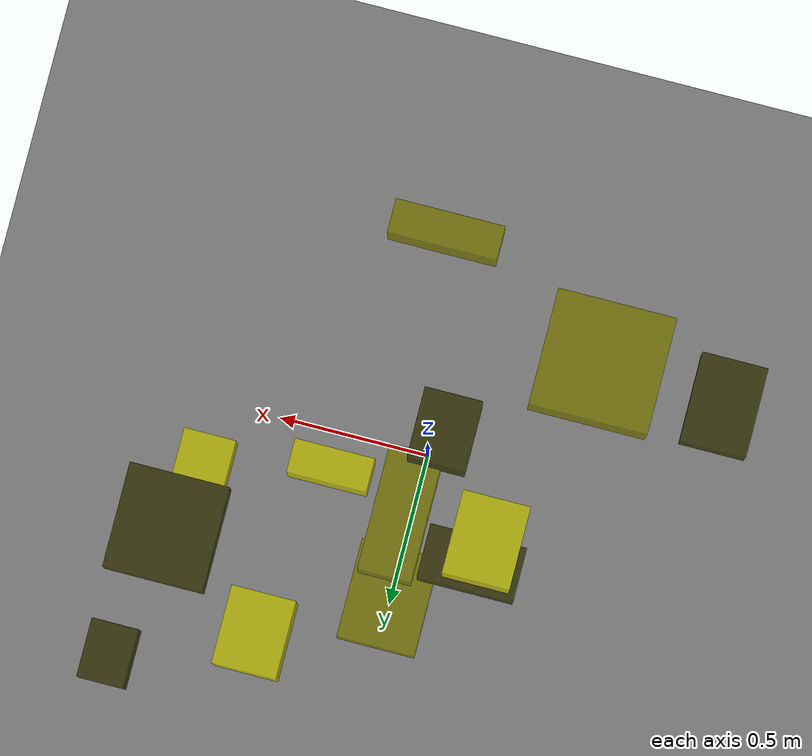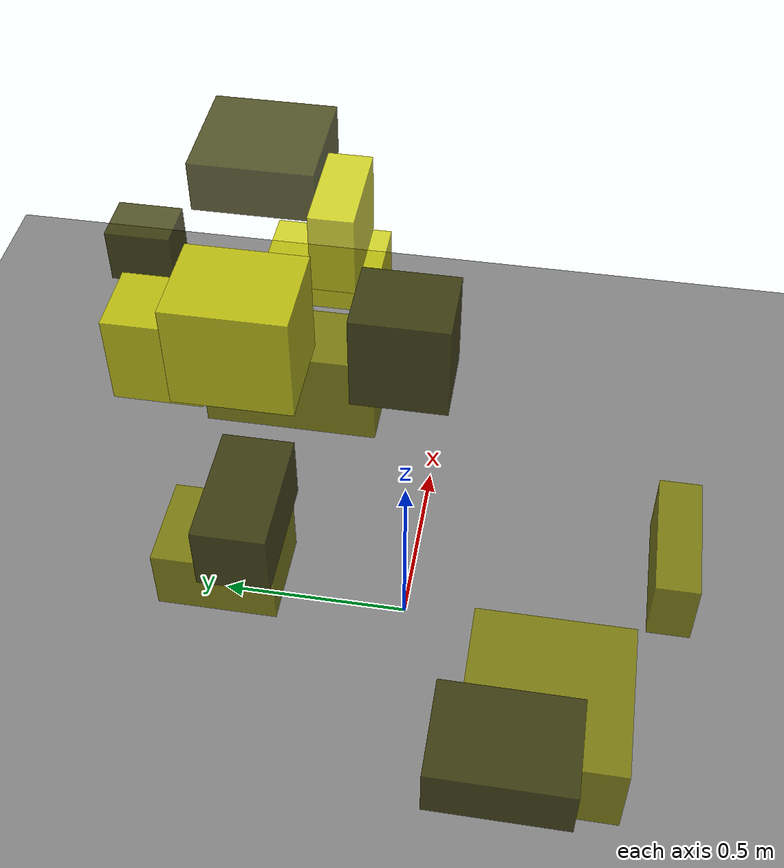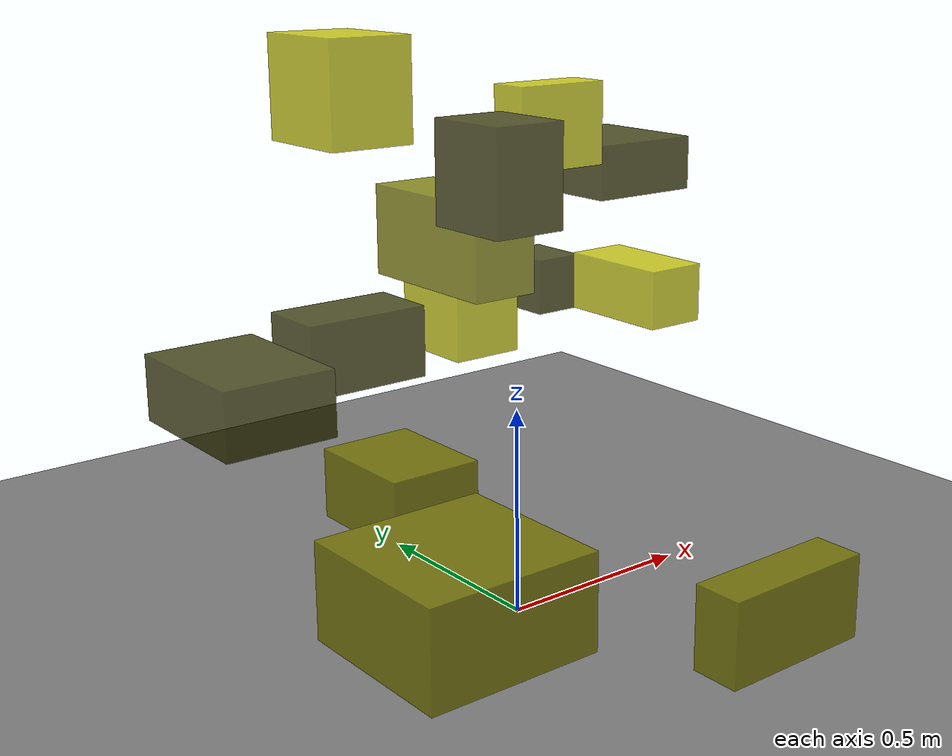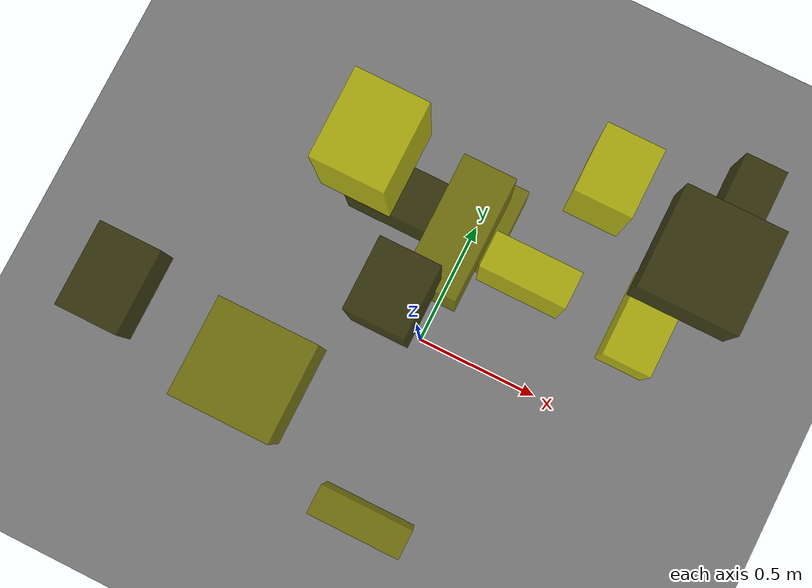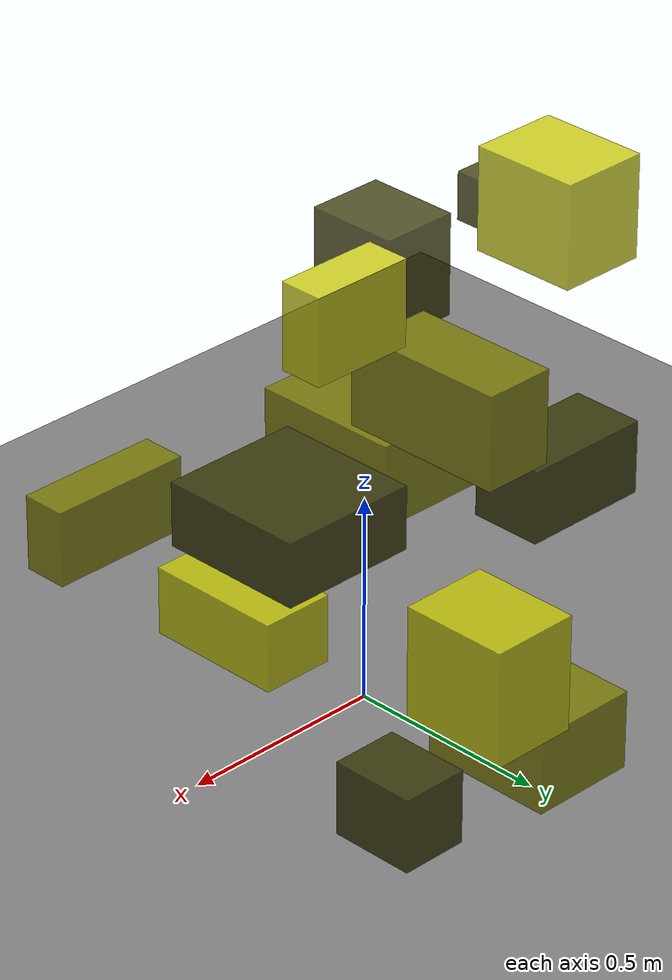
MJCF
<?xml version="1.0"?>
<mujoco model="obstacle_scene">
  <compiler angle="radian" coordinate="local"/>
  <option timestep="0.001" gravity="0 0 -9.81"/>

  <asset>
    <material name="obstacle_mat" rgba="0.8 0.8 0.0 0.8"/>
    <material name="ground_mat" rgba="0.5 0.5 0.5 1"/>
  </asset>

  <worldbody>
    <!-- Ground plane -->
    <geom name="ground" type="plane" size="3 3 0.1" material="ground_mat"/>

    <!-- Obstacles -->
    <body name="obstacle_0" pos="-0.051186 -0.003498 1.050603">
      <geom name="obs_0" type="box" size="0.090816 0.109390 0.119361" rgba="0.2 0.2 0.0 0.8"/>
    </body>
    <body name="obstacle_1" pos="0.020196 0.262998 0.859283">
      <geom name="obs_1" type="box" size="0.084438 0.198985 0.111021" rgba="0.5 0.5 0.0 0.8"/>
    </body>
    <body name="obstacle_2" pos="0.661261 0.315118 0.634198">
      <geom name="obs_2" type="box" size="0.083134 0.157291 0.076923" rgba="0.8 0.8 0.0 0.8"/>
    </body>
    <body name="obstacle_3" pos="-0.229054 0.341617 0.623111">
      <geom name="obs_3" type="box" size="0.154888 0.086505 0.086697" rgba="0.2 0.2 0.0 0.8"/>
    </body>
    <body name="obstacle_4" pos="0.004824 0.490423 0.158924">
      <geom name="obs_4" type="box" size="0.128341 0.162474 0.094185" rgba="0.5 0.5 0.0 0.8"/>
    </body>
    <body name="obstacle_5" pos="-0.256068 0.300403 1.224424">
      <geom name="obs_5" type="box" size="0.104019 0.127624 0.119567" rgba="0.8 0.8 0.0 0.8"/>
    </body>
    <body name="obstacle_6" pos="0.804483 0.895265 0.526656">
      <geom name="obs_6" type="box" size="0.074970 0.094987 0.082585" rgba="0.2 0.2 0.0 0.8"/>
    </body>
    <body name="obstacle_7" pos="0.119966 -0.698913 0.225273">
      <geom name="obs_7" type="box" size="0.181753 0.056300 0.094097" rgba="0.5 0.5 0.0 0.8"/>
    </body>
    <body name="obstacle_8" pos="0.254137 0.192327 1.113413">
      <geom name="obs_8" type="box" size="0.123832 0.052246 0.100944" rgba="0.8 0.8 0.0 0.8"/>
    </body>
    <body name="obstacle_9" pos="-0.863068 -0.318993 0.791517">
      <geom name="obs_9" type="box" size="0.104212 0.142635 0.060889" rgba="0.2 0.2 0.0 0.8"/>
    </body>
    <body name="obstacle_10" pos="-0.471402 -0.400741 0.326600">
      <geom name="obs_10" type="box" size="0.195176 0.191413 0.105031" rgba="0.5 0.5 0.0 0.8"/>
    </body>
    <body name="obstacle_11" pos="0.374224 0.719969 0.560117">
      <geom name="obs_11" type="box" size="0.103161 0.125426 0.133978" rgba="0.8 0.8 0.0 0.8"/>
    </body>
    <body name="obstacle_12" pos="0.699482 0.487097 0.949307">
      <geom name="obs_12" type="box" size="0.156860 0.164956 0.071663" rgba="0.2 0.2 0.0 0.8"/>
    </body>
  </worldbody>
</mujoco>
